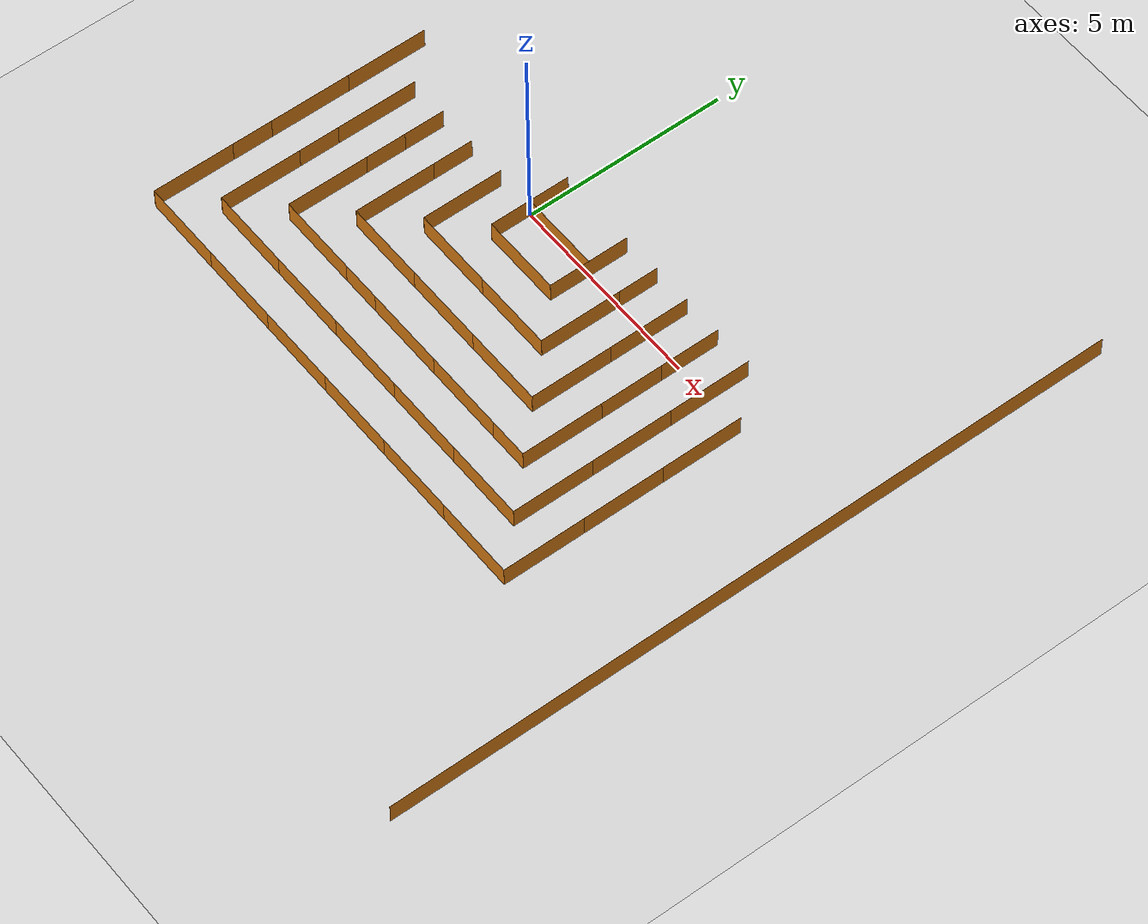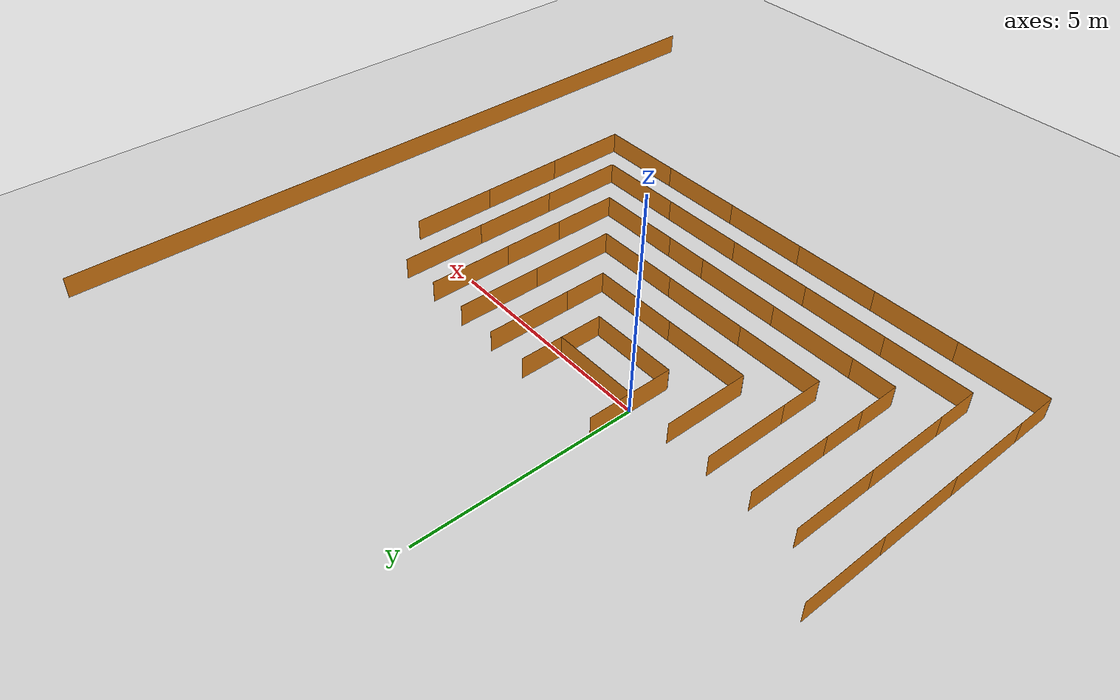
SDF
<sdf version="1.6">
 <world name="default">
  <model name="ground_plane">
   <static>1</static>
   <link name="link">
    <collision name="collision">
     <geometry><plane><normal>0 0 1</normal><size>100 100</size></plane></geometry>
     <surface><friction><ode><mu>100</mu><mu2>50</mu2></ode></friction></surface>
    </collision>
    <visual name="visual">
     <cast_shadows>0</cast_shadows>
     <geometry><plane><normal>0 0 1</normal><size>100 100</size></plane></geometry>
     <material>
      <script><uri>file://media/materials/scripts/gazebo.material</uri><name>Gazebo/Grey</name></script>
     </material>
    </visual>
   </link>
  </model>
  <model name="wall_13_clone_clone_1_clone_0_clone_6_clone_0_clone">
   <static>1</static>
   <link name="link">
    <collision name="collision"><geometry><box><size>18.0752 0.001 1</size></box></geometry></collision>
    <visual name="visual">
     <geometry><box><size>18.0752 0.001 1</size></box></geometry>
     <material>
      <script><name>Gazebo/Orange</name><uri>file://media/materials/scripts/gazebo.material</uri></script>
     </material>
    </visual>
   </link>
   <pose>10 -2 0 0 0 -1.5708</pose>
  </model>
  <model name="wall_13_clone_clone_1_clone_0_clone_clone_16_clone_1_clone">
   <static>1</static>
   <link name="link">
    <collision name="collision"><geometry><box><size>2.00836 0.001 1</size></box></geometry></collision>
    <visual name="visual">
     <geometry><box><size>2.00836 0.001 1</size></box></geometry>
     <material>
      <script><name>Gazebo/Orange</name><uri>file://media/materials/scripts/gazebo.material</uri></script>
     </material>
    </visual>
   </link>
   <pose>1 0 0 0 -0 3.14159</pose>
  </model>
  <model name="wall_13_clone_clone_1_clone_0_clone_0_clone_1_clone">
   <static>1</static>
   <link name="link">
    <collision name="collision"><geometry><box><size>2.00836 0.001 1</size></box></geometry></collision>
    <visual name="visual">
     <geometry><box><size>2.00836 0.001 1</size></box></geometry>
     <material>
      <script><name>Gazebo/Orange</name><uri>file://media/materials/scripts/gazebo.material</uri></script>
     </material>
    </visual>
   </link>
   <pose>3 0 0 0 0 -1.5708</pose>
  </model>
  <model name="wall_13_clone_clone_1_clone_0_clone_0_clone_1_clone_2_clone">
   <static>1</static>
   <link name="link">
    <collision name="collision"><geometry><box><size>2.00836 0.001 1</size></box></geometry></collision>
    <visual name="visual">
     <geometry><box><size>2.00836 0.001 1</size></box></geometry>
     <material>
      <script><name>Gazebo/Orange</name><uri>file://media/materials/scripts/gazebo.material</uri></script>
     </material>
    </visual>
   </link>
   <pose>-1 -1 0 0 0 -1.5708</pose>
  </model>
  <model name="wall_13_clone_clone_1_clone_0_clone_clone_16_clone_1_clone_clone_0_clone">
   <static>1</static>
   <link name="link">
    <collision name="collision"><geometry><box><size>2.00836 0.001 1</size></box></geometry></collision>
    <visual name="visual">
     <geometry><box><size>2.00836 0.001 1</size></box></geometry>
     <material>
      <script><name>Gazebo/Orange</name><uri>file://media/materials/scripts/gazebo.material</uri></script>
     </material>
    </visual>
   </link>
   <pose>0 -2 0 0 -0 3.14159</pose>
  </model>
  <model name="wall_13_clone_clone_1_clone_0_clone_clone_16_clone_1_clone_clone_1_clone_clone">
   <static>1</static>
   <link name="link">
    <collision name="collision"><geometry><box><size>2.00836 0.001 1</size></box></geometry></collision>
    <visual name="visual">
     <geometry><box><size>2.00836 0.001 1</size></box></geometry>
     <material>
      <script><name>Gazebo/Orange</name><uri>file://media/materials/scripts/gazebo.material</uri></script>
     </material>
    </visual>
   </link>
   <pose>2 -2 0 0 -0 3.14159</pose>
  </model>
  <model name="wall_13_clone_clone_1_clone_0_clone_0">
   <static>1</static>
   <link name="link">
    <collision name="collision"><geometry><box><size>2.00837 0.001 1</size></box></geometry></collision>
    <visual name="visual">
     <geometry><box><size>2.00837 0.001 1</size></box></geometry>
     <material>
      <script><name>Gazebo/Orange</name><uri>file://media/materials/scripts/gazebo.material</uri></script>
     </material>
    </visual>
   </link>
   <pose>0 0 0 0 0 -1.5708</pose>
  </model>
  <model name="wall_13_clone_clone_1_clone_0_clone_clone_16_clone_1_clone_clone_clone">
   <static>1</static>
   <link name="link">
    <collision name="collision"><geometry><box><size>2.00836 0.001 1</size></box></geometry></collision>
    <visual name="visual">
     <geometry><box><size>2.00836 0.001 1</size></box></geometry>
     <material>
      <script><name>Gazebo/Orange</name><uri>file://media/materials/scripts/gazebo.material</uri></script>
     </material>
    </visual>
   </link>
   <pose>1 -1 0 0 -0 3.14159</pose>
  </model>
  <model name="wall_13_clone_clone_1_clone_0_clone_0_clone_1_clone_clone">
   <static>1</static>
   <link name="link">
    <collision name="collision"><geometry><box><size>2.00836 0.001 1</size></box></geometry></collision>
    <visual name="visual">
     <geometry><box><size>2.00836 0.001 1</size></box></geometry>
     <material>
      <script><name>Gazebo/Orange</name><uri>file://media/materials/scripts/gazebo.material</uri></script>
     </material>
    </visual>
   </link>
   <pose>3 -1 0 0 0 -1.5708</pose>
  </model>
  <model name="wall_13_clone_clone_1_clone_0_clone_0_clone_1_clone_clone_0">
   <static>1</static>
   <link name="link">
    <collision name="collision"><geometry><box><size>2.00836 0.001 1</size></box></geometry></collision>
    <visual name="visual">
     <geometry><box><size>2.00836 0.001 1</size></box></geometry>
     <material>
      <script><name>Gazebo/Orange</name><uri>file://media/materials/scripts/gazebo.material</uri></script>
     </material>
    </visual>
   </link>
   <pose>2 0 0 0 0 -1.5708</pose>
  </model>
  <model name="wall_13_clone_clone_1_clone_0_clone_0_clone_0_clone_3">
   <static>1</static>
   <link name="link">
    <collision name="collision"><geometry><box><size>2.00836 0.001 1</size></box></geometry></collision>
    <visual name="visual">
     <geometry><box><size>2.00836 0.001 1</size></box></geometry>
     <material>
      <script><name>Gazebo/Orange</name><uri>file://media/materials/scripts/gazebo.material</uri></script>
     </material>
    </visual>
   </link>
   <pose>-3 -1 0 0 0 -1.5708</pose>
  </model>
  <model name="wall_13_clone_clone_1_clone_0_clone_0_clone_0_clone_4">
   <static>1</static>
   <link name="link">
    <collision name="collision"><geometry><box><size>2.00836 0.001 1</size></box></geometry></collision>
    <visual name="visual">
     <geometry><box><size>2.00836 0.001 1</size></box></geometry>
     <material>
      <script><name>Gazebo/Orange</name><uri>file://media/materials/scripts/gazebo.material</uri></script>
     </material>
    </visual>
   </link>
   <pose>-3 -2 0 0 0 -1.5708</pose>
  </model>
  <model name="wall_13_clone_clone_1_clone_0_clone_0_clone_0_clone_6">
   <static>1</static>
   <link name="link">
    <collision name="collision"><geometry><box><size>2.00836 0.001 1</size></box></geometry></collision>
    <visual name="visual">
     <geometry><box><size>2.00836 0.001 1</size></box></geometry>
     <material>
      <script><name>Gazebo/Orange</name><uri>file://media/materials/scripts/gazebo.material</uri></script>
     </material>
    </visual>
   </link>
   <pose>-2 -1 0 0 0 -1.5708</pose>
  </model>
  <model name="wall_13_clone_clone_1_clone_0_clone_0_clone_0_clone_7">
   <static>1</static>
   <link name="link">
    <collision name="collision"><geometry><box><size>2.00836 0.001 1</size></box></geometry></collision>
    <visual name="visual">
     <geometry><box><size>2.00836 0.001 1</size></box></geometry>
     <material>
      <script><name>Gazebo/Orange</name><uri>file://media/materials/scripts/gazebo.material</uri></script>
     </material>
    </visual>
   </link>
   <pose>-2 -2 0 0 0 -1.5708</pose>
  </model>
  <model name="wall_13_clone_clone_1_clone_0_clone_0_clone_0_clone_8">
   <static>1</static>
   <link name="link">
    <collision name="collision"><geometry><box><size>2.00836 0.001 1</size></box></geometry></collision>
    <visual name="visual">
     <geometry><box><size>2.00836 0.001 1</size></box></geometry>
     <material>
      <script><name>Gazebo/Orange</name><uri>file://media/materials/scripts/gazebo.material</uri></script>
     </material>
    </visual>
   </link>
   <pose>-3 -3 0 0 0 -1.5708</pose>
  </model>
  <model name="wall_13_clone_clone_1_clone_0_clone_clone_16_clone_1_clone_clone_0_clone_clone">
   <static>1</static>
   <link name="link">
    <collision name="collision"><geometry><box><size>2.00836 0.001 1</size></box></geometry></collision>
    <visual name="visual">
     <geometry><box><size>2.00836 0.001 1</size></box></geometry>
     <material>
      <script><name>Gazebo/Orange</name><uri>file://media/materials/scripts/gazebo.material</uri></script>
     </material>
    </visual>
   </link>
   <pose>-1 -3 0 0 -0 3.14159</pose>
  </model>
  <model name="wall_13_clone_clone_1_clone_0_clone_clone_16_clone_1_clone_clone_0_clone_clone_0">
   <static>1</static>
   <link name="link">
    <collision name="collision"><geometry><box><size>2.00836 0.001 1</size></box></geometry></collision>
    <visual name="visual">
     <geometry><box><size>2.00836 0.001 1</size></box></geometry>
     <material>
      <script><name>Gazebo/Orange</name><uri>file://media/materials/scripts/gazebo.material</uri></script>
     </material>
    </visual>
   </link>
   <pose>-2 -4 0 0 -0 3.14159</pose>
  </model>
  <model name="wall_13_clone_clone_1_clone_0_clone_clone_16_clone_1_clone_clone_0_clone_clone_1">
   <static>1</static>
   <link name="link">
    <collision name="collision"><geometry><box><size>2.00836 0.001 1</size></box></geometry></collision>
    <visual name="visual">
     <geometry><box><size>2.00836 0.001 1</size></box></geometry>
     <material>
      <script><name>Gazebo/Orange</name><uri>file://media/materials/scripts/gazebo.material</uri></script>
     </material>
    </visual>
   </link>
   <pose>-1 -4 0 0 -0 3.14159</pose>
  </model>
  <model name="wall_13_clone_clone_1_clone_0_clone_clone_16_clone_1_clone_clone_0_clone_clone_2">
   <static>1</static>
   <link name="link">
    <collision name="collision"><geometry><box><size>2.00836 0.001 1</size></box></geometry></collision>
    <visual name="visual">
     <geometry><box><size>2.00836 0.001 1</size></box></geometry>
     <material>
      <script><name>Gazebo/Orange</name><uri>file://media/materials/scripts/gazebo.material</uri></script>
     </material>
    </visual>
   </link>
   <pose>1 -4 0 0 -0 3.14159</pose>
  </model>
  <model name="wall_13_clone_clone_1_clone_0_clone_clone_16_clone_1_clone_clone_0_clone_clone_3">
   <static>1</static>
   <link name="link">
    <collision name="collision"><geometry><box><size>2.00836 0.001 1</size></box></geometry></collision>
    <visual name="visual">
     <geometry><box><size>2.00836 0.001 1</size></box></geometry>
     <material>
      <script><name>Gazebo/Orange</name><uri>file://media/materials/scripts/gazebo.material</uri></script>
     </material>
    </visual>
   </link>
   <pose>3 -4 0 0 -0 3.14159</pose>
  </model>
  <model name="wall_13_clone_clone_1_clone_0_clone_clone_16_clone_1_clone_clone_0_clone_clone_4">
   <static>1</static>
   <link name="link">
    <collision name="collision"><geometry><box><size>2.00836 0.001 1</size></box></geometry></collision>
    <visual name="visual">
     <geometry><box><size>2.00836 0.001 1</size></box></geometry>
     <material>
      <script><name>Gazebo/Orange</name><uri>file://media/materials/scripts/gazebo.material</uri></script>
     </material>
    </visual>
   </link>
   <pose>4 -4 0 0 -0 3.14159</pose>
  </model>
  <model name="wall_13_clone_clone_1_clone_0_clone_clone_16_clone_1_clone_clone_0_clone_clone_6">
   <static>1</static>
   <link name="link">
    <collision name="collision"><geometry><box><size>2.00836 0.001 1</size></box></geometry></collision>
    <visual name="visual">
     <geometry><box><size>2.00836 0.001 1</size></box></geometry>
     <material>
      <script><name>Gazebo/Orange</name><uri>file://media/materials/scripts/gazebo.material</uri></script>
     </material>
    </visual>
   </link>
   <pose>1 -3 0 0 -0 3.14159</pose>
  </model>
  <model name="wall_13_clone_clone_1_clone_0_clone_clone_16_clone_1_clone_clone_0_clone_clone_7">
   <static>1</static>
   <link name="link">
    <collision name="collision"><geometry><box><size>2.00836 0.001 1</size></box></geometry></collision>
    <visual name="visual">
     <geometry><box><size>2.00836 0.001 1</size></box></geometry>
     <material>
      <script><name>Gazebo/Orange</name><uri>file://media/materials/scripts/gazebo.material</uri></script>
     </material>
    </visual>
   </link>
   <pose>3 -3 0 0 -0 3.14159</pose>
  </model>
  <model name="wall_13_clone_clone_1_clone_0_clone_clone_16_clone_1_clone_clone_0_clone_clone_8">
   <static>1</static>
   <link name="link">
    <collision name="collision"><geometry><box><size>2.00836 0.001 1</size></box></geometry></collision>
    <visual name="visual">
     <geometry><box><size>2.00836 0.001 1</size></box></geometry>
     <material>
      <script><name>Gazebo/Orange</name><uri>file://media/materials/scripts/gazebo.material</uri></script>
     </material>
    </visual>
   </link>
   <pose>3 -3 0 0 -0 3.14159</pose>
  </model>
  <model name="wall_13_clone_clone_1_clone_0_clone_0_clone_1_clone_clone_clone">
   <static>1</static>
   <link name="link">
    <collision name="collision"><geometry><box><size>2.00836 0.001 1</size></box></geometry></collision>
    <visual name="visual">
     <geometry><box><size>2.00836 0.001 1</size></box></geometry>
     <material>
      <script><name>Gazebo/Orange</name><uri>file://media/materials/scripts/gazebo.material</uri></script>
     </material>
    </visual>
   </link>
   <pose>5 -3 0 0 0 -1.5708</pose>
  </model>
  <model name="wall_13_clone_clone_1_clone_0_clone_0_clone_1_clone_clone_clone_0">
   <static>1</static>
   <link name="link">
    <collision name="collision"><geometry><box><size>2.00836 0.001 1</size></box></geometry></collision>
    <visual name="visual">
     <geometry><box><size>2.00836 0.001 1</size></box></geometry>
     <material>
      <script><name>Gazebo/Orange</name><uri>file://media/materials/scripts/gazebo.material</uri></script>
     </material>
    </visual>
   </link>
   <pose>4 -2 0 0 0 -1.5708</pose>
  </model>
  <model name="wall_13_clone_clone_1_clone_0_clone_0_clone_1_clone_clone_clone_1">
   <static>1</static>
   <link name="link">
    <collision name="collision"><geometry><box><size>2.00836 0.001 1</size></box></geometry></collision>
    <visual name="visual">
     <geometry><box><size>2.00836 0.001 1</size></box></geometry>
     <material>
      <script><name>Gazebo/Orange</name><uri>file://media/materials/scripts/gazebo.material</uri></script>
     </material>
    </visual>
   </link>
   <pose>5 -1.46881 0 0 0 -1.5708</pose>
  </model>
  <model name="wall_13_clone_clone_1_clone_0_clone_0_clone_1_clone_clone_clone_2">
   <static>1</static>
   <link name="link">
    <collision name="collision"><geometry><box><size>2.00836 0.001 1</size></box></geometry></collision>
    <visual name="visual">
     <geometry><box><size>2.00836 0.001 1</size></box></geometry>
     <material>
      <script><name>Gazebo/Orange</name><uri>file://media/materials/scripts/gazebo.material</uri></script>
     </material>
    </visual>
   </link>
   <pose>4 0 0 0 0 -1.5708</pose>
  </model>
  <model name="wall_13_clone_clone_1_clone_0_clone_0_clone_1_clone_clone_clone_3">
   <static>1</static>
   <link name="link">
    <collision name="collision"><geometry><box><size>2.00836 0.001 1</size></box></geometry></collision>
    <visual name="visual">
     <geometry><box><size>2.00836 0.001 1</size></box></geometry>
     <material>
      <script><name>Gazebo/Orange</name><uri>file://media/materials/scripts/gazebo.material</uri></script>
     </material>
    </visual>
   </link>
   <pose>5 0 0 0 0 -1.5708</pose>
  </model>
  <model name="wall_13_clone_clone_1_clone_0_clone_0_clone_0_clone_0_clone_5">
   <static>1</static>
   <link name="link">
    <collision name="collision"><geometry><box><size>2.00836 0.001 1</size></box></geometry></collision>
    <visual name="visual">
     <geometry><box><size>2.00836 0.001 1</size></box></geometry>
     <material>
      <script><name>Gazebo/Orange</name><uri>file://media/materials/scripts/gazebo.material</uri></script>
     </material>
    </visual>
   </link>
   <pose>-5 0 0 0 0 -1.5708</pose>
  </model>
  <model name="wall_13_clone_clone_1_clone_0_clone_0_clone_0_clone_0_clone_6">
   <static>1</static>
   <link name="link">
    <collision name="collision"><geometry><box><size>2.00836 0.001 1</size></box></geometry></collision>
    <visual name="visual">
     <geometry><box><size>2.00836 0.001 1</size></box></geometry>
     <material>
      <script><name>Gazebo/Orange</name><uri>file://media/materials/scripts/gazebo.material</uri></script>
     </material>
    </visual>
   </link>
   <pose>-4 -1 0 0 0 -1.5708</pose>
  </model>
  <model name="wall_13_clone_clone_1_clone_0_clone_0_clone_0_clone_0_clone_7">
   <static>1</static>
   <link name="link">
    <collision name="collision"><geometry><box><size>2.00836 0.001 1</size></box></geometry></collision>
    <visual name="visual">
     <geometry><box><size>2.00836 0.001 1</size></box></geometry>
     <material>
      <script><name>Gazebo/Orange</name><uri>file://media/materials/scripts/gazebo.material</uri></script>
     </material>
    </visual>
   </link>
   <pose>-5 -2 0 0 0 -1.5708</pose>
  </model>
  <model name="wall_13_clone_clone_1_clone_0_clone_0_clone_0_clone_0_clone_8">
   <static>1</static>
   <link name="link">
    <collision name="collision"><geometry><box><size>2.00836 0.001 1</size></box></geometry></collision>
    <visual name="visual">
     <geometry><box><size>2.00836 0.001 1</size></box></geometry>
     <material>
      <script><name>Gazebo/Orange</name><uri>file://media/materials/scripts/gazebo.material</uri></script>
     </material>
    </visual>
   </link>
   <pose>-4 -3 0 0 0 -1.5708</pose>
  </model>
  <model name="wall_13_clone_clone_1_clone_0_clone_0_clone_0_clone_0_clone_9">
   <static>1</static>
   <link name="link">
    <collision name="collision"><geometry><box><size>2.00836 0.001 1</size></box></geometry></collision>
    <visual name="visual">
     <geometry><box><size>2.00836 0.001 1</size></box></geometry>
     <material>
      <script><name>Gazebo/Orange</name><uri>file://media/materials/scripts/gazebo.material</uri></script>
     </material>
    </visual>
   </link>
   <pose>-5 -4 0 0 0 -1.5708</pose>
  </model>
  <model name="wall_13_clone_clone_1_clone_0_clone_0_clone_0_clone_0_clone_10">
   <static>1</static>
   <link name="link">
    <collision name="collision"><geometry><box><size>2.00836 0.001 1</size></box></geometry></collision>
    <visual name="visual">
     <geometry><box><size>2.00836 0.001 1</size></box></geometry>
     <material>
      <script><name>Gazebo/Orange</name><uri>file://media/materials/scripts/gazebo.material</uri></script>
     </material>
    </visual>
   </link>
   <pose>-4 -4 0 0 0 -1.5708</pose>
  </model>
  <model name="wall_13_clone_clone_1_clone_0_clone_0_clone_0_clone_0_clone_11">
   <static>1</static>
   <link name="link">
    <collision name="collision"><geometry><box><size>2.00836 0.001 1</size></box></geometry></collision>
    <visual name="visual">
     <geometry><box><size>2.00836 0.001 1</size></box></geometry>
     <material>
      <script><name>Gazebo/Orange</name><uri>file://media/materials/scripts/gazebo.material</uri></script>
     </material>
    </visual>
   </link>
   <pose>-5 -5 0 0 0 -1.5708</pose>
  </model>
  <model name="wall_13_clone_clone_1_clone_0_clone_clone_16_clone_1_clone_clone_0_clone_clone_0_clone">
   <static>1</static>
   <link name="link">
    <collision name="collision"><geometry><box><size>2.00836 0.001 1</size></box></geometry></collision>
    <visual name="visual">
     <geometry><box><size>2.00836 0.001 1</size></box></geometry>
     <material>
      <script><name>Gazebo/Orange</name><uri>file://media/materials/scripts/gazebo.material</uri></script>
     </material>
    </visual>
   </link>
   <pose>-3 -5 0 0 -0 3.14159</pose>
  </model>
  <model name="wall_13_clone_clone_1_clone_0_clone_clone_16_clone_1_clone_clone_0_clone_clone_0_clone_0">
   <static>1</static>
   <link name="link">
    <collision name="collision"><geometry><box><size>2.00836 0.001 1</size></box></geometry></collision>
    <visual name="visual">
     <geometry><box><size>2.00836 0.001 1</size></box></geometry>
     <material>
      <script><name>Gazebo/Orange</name><uri>file://media/materials/scripts/gazebo.material</uri></script>
     </material>
    </visual>
   </link>
   <pose>-4 -6 0 0 -0 3.14159</pose>
  </model>
  <model name="wall_13_clone_clone_1_clone_0_clone_clone_16_clone_1_clone_clone_0_clone_clone_0_clone_1">
   <static>1</static>
   <link name="link">
    <collision name="collision"><geometry><box><size>2.00836 0.001 1</size></box></geometry></collision>
    <visual name="visual">
     <geometry><box><size>2.00836 0.001 1</size></box></geometry>
     <material>
      <script><name>Gazebo/Orange</name><uri>file://media/materials/scripts/gazebo.material</uri></script>
     </material>
    </visual>
   </link>
   <pose>-2 -6 0 0 -0 3.14159</pose>
  </model>
  <model name="wall_13_clone_clone_1_clone_0_clone_clone_16_clone_1_clone_clone_0_clone_clone_0_clone_2">
   <static>1</static>
   <link name="link">
    <collision name="collision"><geometry><box><size>2.00836 0.001 1</size></box></geometry></collision>
    <visual name="visual">
     <geometry><box><size>2.00836 0.001 1</size></box></geometry>
     <material>
      <script><name>Gazebo/Orange</name><uri>file://media/materials/scripts/gazebo.material</uri></script>
     </material>
    </visual>
   </link>
   <pose>-1 -5 0 0 -0 3.14159</pose>
  </model>
  <model name="wall_13_clone_clone_1_clone_0_clone_clone_16_clone_1_clone_clone_0_clone_clone_0_clone_4">
   <static>1</static>
   <link name="link">
    <collision name="collision"><geometry><box><size>2.00836 0.001 1</size></box></geometry></collision>
    <visual name="visual">
     <geometry><box><size>2.00836 0.001 1</size></box></geometry>
     <material>
      <script><name>Gazebo/Orange</name><uri>file://media/materials/scripts/gazebo.material</uri></script>
     </material>
    </visual>
   </link>
   <pose>0 -6 0 0 -0 3.14159</pose>
  </model>
  <model name="wall_13_clone_clone_1_clone_0_clone_clone_16_clone_1_clone_clone_0_clone_clone_0_clone_3">
   <static>1</static>
   <link name="link">
    <collision name="collision"><geometry><box><size>2.00836 0.001 1</size></box></geometry></collision>
    <visual name="visual">
     <geometry><box><size>2.00836 0.001 1</size></box></geometry>
     <material>
      <script><name>Gazebo/Orange</name><uri>file://media/materials/scripts/gazebo.material</uri></script>
     </material>
    </visual>
   </link>
   <pose>1 -5 0 0 -0 3.14159</pose>
  </model>
  <model name="wall_13_clone_clone_1_clone_0_clone_clone_16_clone_1_clone_clone_0_clone_clone_0_clone_5">
   <static>1</static>
   <link name="link">
    <collision name="collision"><geometry><box><size>2.00836 0.001 1</size></box></geometry></collision>
    <visual name="visual">
     <geometry><box><size>2.00836 0.001 1</size></box></geometry>
     <material>
      <script><name>Gazebo/Orange</name><uri>file://media/materials/scripts/gazebo.material</uri></script>
     </material>
    </visual>
   </link>
   <pose>3 -5 0 0 -0 3.14159</pose>
  </model>
  <model name="wall_13_clone_clone_1_clone_0_clone_clone_16_clone_1_clone_clone_0_clone_clone_0_clone_6">
   <static>1</static>
   <link name="link">
    <collision name="collision"><geometry><box><size>2.00836 0.001 1</size></box></geometry></collision>
    <visual name="visual">
     <geometry><box><size>2.00836 0.001 1</size></box></geometry>
     <material>
      <script><name>Gazebo/Orange</name><uri>file://media/materials/scripts/gazebo.material</uri></script>
     </material>
    </visual>
   </link>
   <pose>4 -6 0 0 -0 3.14159</pose>
  </model>
  <model name="wall_13_clone_clone_1_clone_0_clone_clone_16_clone_1_clone_clone_0_clone_clone_0_clone_7">
   <static>1</static>
   <link name="link">
    <collision name="collision"><geometry><box><size>2.00836 0.001 1</size></box></geometry></collision>
    <visual name="visual">
     <geometry><box><size>2.00836 0.001 1</size></box></geometry>
     <material>
      <script><name>Gazebo/Orange</name><uri>file://media/materials/scripts/gazebo.material</uri></script>
     </material>
    </visual>
   </link>
   <pose>5 -5 0 0 -0 3.14159</pose>
  </model>
  <model name="wall_13_clone_clone_1_clone_0_clone_clone_16_clone_1_clone_clone_0_clone_clone_0_clone_8">
   <static>1</static>
   <link name="link">
    <collision name="collision"><geometry><box><size>2.00836 0.001 1</size></box></geometry></collision>
    <visual name="visual">
     <geometry><box><size>2.00836 0.001 1</size></box></geometry>
     <material>
      <script><name>Gazebo/Orange</name><uri>file://media/materials/scripts/gazebo.material</uri></script>
     </material>
    </visual>
   </link>
   <pose>6 -6 0 0 -0 3.14159</pose>
  </model>
  <model name="wall_13_clone_clone_1_clone_0_clone_0_clone_1_clone_clone_clone_clone">
   <static>1</static>
   <link name="link">
    <collision name="collision"><geometry><box><size>2.00836 0.001 1</size></box></geometry></collision>
    <visual name="visual">
     <geometry><box><size>2.00836 0.001 1</size></box></geometry>
     <material>
      <script><name>Gazebo/Orange</name><uri>file://media/materials/scripts/gazebo.material</uri></script>
     </material>
    </visual>
   </link>
   <pose>7 -5 0 0 0 -1.5708</pose>
  </model>
  <model name="wall_13_clone_clone_1_clone_0_clone_0_clone_1_clone_clone_clone_clone_0">
   <static>1</static>
   <link name="link">
    <collision name="collision"><geometry><box><size>2.00836 0.001 1</size></box></geometry></collision>
    <visual name="visual">
     <geometry><box><size>2.00836 0.001 1</size></box></geometry>
     <material>
      <script><name>Gazebo/Orange</name><uri>file://media/materials/scripts/gazebo.material</uri></script>
     </material>
    </visual>
   </link>
   <pose>6 -4 0 0 0 -1.5708</pose>
  </model>
  <model name="wall_13_clone_clone_1_clone_0_clone_0_clone_1_clone_clone_clone_clone_1">
   <static>1</static>
   <link name="link">
    <collision name="collision"><geometry><box><size>2.00836 0.001 1</size></box></geometry></collision>
    <visual name="visual">
     <geometry><box><size>2.00836 0.001 1</size></box></geometry>
     <material>
      <script><name>Gazebo/Orange</name><uri>file://media/materials/scripts/gazebo.material</uri></script>
     </material>
    </visual>
   </link>
   <pose>7 -3 0 0 0 -1.5708</pose>
  </model>
  <model name="wall_13_clone_clone_1_clone_0_clone_0_clone_1_clone_clone_clone_clone_2">
   <static>1</static>
   <link name="link">
    <collision name="collision"><geometry><box><size>2.00836 0.001 1</size></box></geometry></collision>
    <visual name="visual">
     <geometry><box><size>2.00836 0.001 1</size></box></geometry>
     <material>
      <script><name>Gazebo/Orange</name><uri>file://media/materials/scripts/gazebo.material</uri></script>
     </material>
    </visual>
   </link>
   <pose>6 -2 0 0 0 -1.5708</pose>
  </model>
  <model name="wall_13_clone_clone_1_clone_0_clone_0_clone_1_clone_clone_clone_clone_3">
   <static>1</static>
   <link name="link">
    <collision name="collision"><geometry><box><size>2.00836 0.001 1</size></box></geometry></collision>
    <visual name="visual">
     <geometry><box><size>2.00836 0.001 1</size></box></geometry>
     <material>
      <script><name>Gazebo/Orange</name><uri>file://media/materials/scripts/gazebo.material</uri></script>
     </material>
    </visual>
   </link>
   <pose>7 -1 0 0 0 -1.5708</pose>
  </model>
  <model name="wall_13_clone_clone_1_clone_0_clone_0_clone_1_clone_clone_clone_clone_4">
   <static>1</static>
   <link name="link">
    <collision name="collision"><geometry><box><size>2.00836 0.001 1</size></box></geometry></collision>
    <visual name="visual">
     <geometry><box><size>2.00836 0.001 1</size></box></geometry>
     <material>
      <script><name>Gazebo/Orange</name><uri>file://media/materials/scripts/gazebo.material</uri></script>
     </material>
    </visual>
   </link>
   <pose>6 0 0 0 0 -1.5708</pose>
  </model>
  <model name="wall_13_clone_clone_1_clone_0_clone_clone_16_clone_1_clone_clone_0_clone_clone_0_clone_6_clone">
   <static>1</static>
   <link name="link">
    <collision name="collision"><geometry><box><size>2.00836 0.001 1</size></box></geometry></collision>
    <visual name="visual">
     <geometry><box><size>2.00836 0.001 1</size></box></geometry>
     <material>
      <script><name>Gazebo/Orange</name><uri>file://media/materials/scripts/gazebo.material</uri></script>
     </material>
    </visual>
   </link>
   <pose>2 -6 0 0 -0 3.14159</pose>
  </model>
 </world>
</sdf>
